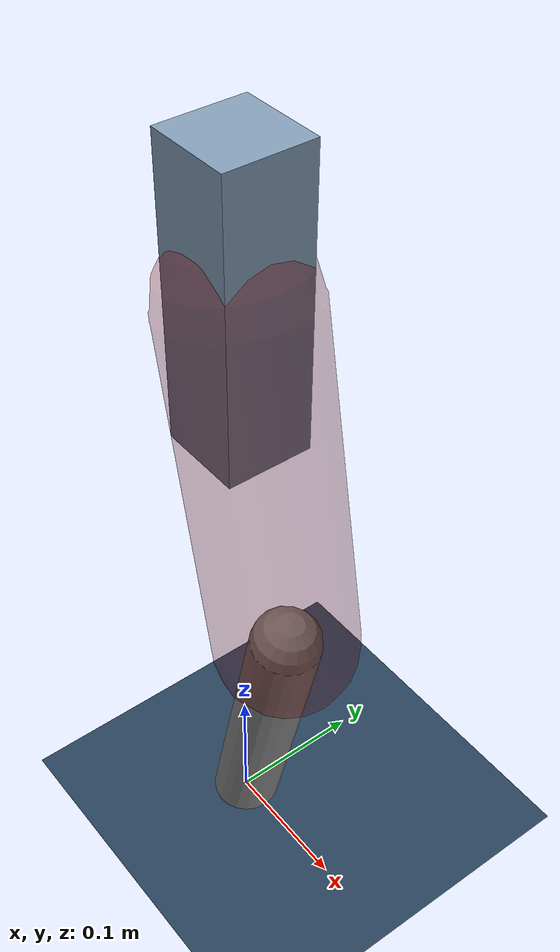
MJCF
<mujoco model="Hopper2D">
	<compiler inertiafromgeom="true" angle="radian" />
	<option timestep="0.001" integrator="implicit" cone="elliptic" solver="Newton" tolerance="1e-10" />

	<default>
		<geom contype="1" conaffinity="1" condim="3" friction="2 0.005 0.0001" solref="0.005 1" />
		<joint limited="true" damping="0.1" />
	</default>

	<asset>
		<texture name="skybox" type="skybox" builtin="gradient" rgb1=".4 .6 .8" rgb2="0 0 0" width="800" height="800" />
		<texture name="grid" type="2d" builtin="checker" rgb1=".1 .2 .3" rgb2=".2 .3 .4" width="300" height="300" mark="edge" markrgb=".2 .3 .4" />
		<material name="ground" texture="grid" texrepeat="1 1" texuniform="true" reflectance="0.1" />
		<material name="leg" rgba="0.5 0.6 0.7 1" />
	</asset>

	<worldbody>

		<geom name="floor" type="plane" size="5 5 0.25" material="ground" />

		<light directional="false" diffuse="0.8 0.8 0.8" specular="0.3 0.3 0.3" pos="0 0 2" dir="0 0 -1" />
		<light mode="targetbodycom" target="base" directional="false" diffuse="0.8 0.8 0.8" specular="0.3 0.3 0.3" pos="0 0 2" dir="0 0 -1" />

		<camera name="fixed" pos="0 -2 1" xyaxes="1 0 0 0 0 1" />
		<camera name="tracking" mode="trackcom" pos="0 -3 1" />

		<body name="root" pos="0 0 0.45704378382172056">
			<joint name="slide_x" type="slide" axis="1 0 0" range="-100 100" />
			<joint name="slide_z" type="slide" axis="0 0 1" range="0 10" />

			<body name="base" pos="0 0 0">
				<geom name="torso" type="box" size="0.03 0.03 0.1" mass="2.965" material="leg" />

				<body name="link1" pos="0 0 0" euler="0 1.3745552386314632 0">
					<joint type="hinge" axis="0 -1 0" pos="0 0 0" name="hinge1" limited="true" range="-3.14 3.14" stiffness="0" damping="0.1" />
					<geom name="thigh" type="capsule" fromto="0 0 0 0.2461306118692692 0 0" size="0.05" rgba="0.5 0 0 0.3" mass="0.8463395908600999" />

					<body name="link2" pos="0.2461306118692692 0 0" euler="0 0.4152287240939233 0">
						<joint type="hinge" axis="0 -1 0" pos="0 0 0" name="hinge2" limited="true" range="-3.14 3.14" stiffness="0" damping="0.1" />
						<geom name="shank" type="capsule" fromto="0 0 0 0.22091317195245136 0 0" size="0.025" mass="0.4184305375619611" />

					</body>
				</body>
			</body>
		</body>
	</worldbody>

	<actuator>
		<motor name="torque1" joint="hinge1" ctrlrange="-111.00937129482845 111.00937129482845" ctrllimited="true" gear="1" />
		<motor name="torque2" joint="hinge2" ctrlrange="-78.25690193745848 78.25690193745848" ctrllimited="true" gear="1" />
	</actuator>
</mujoco>
